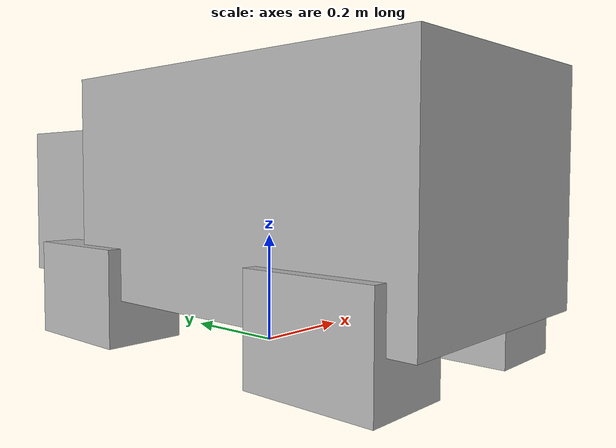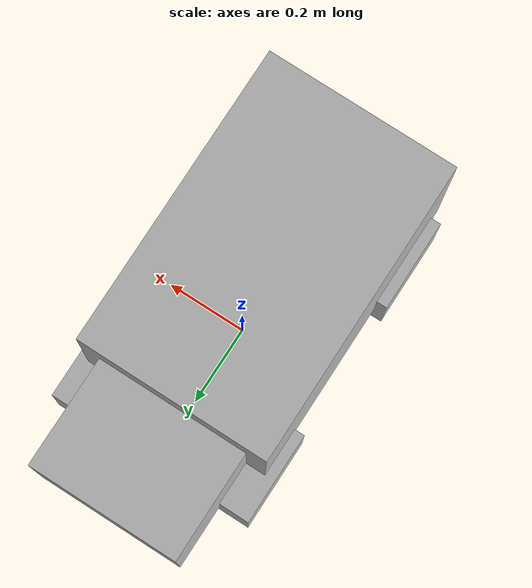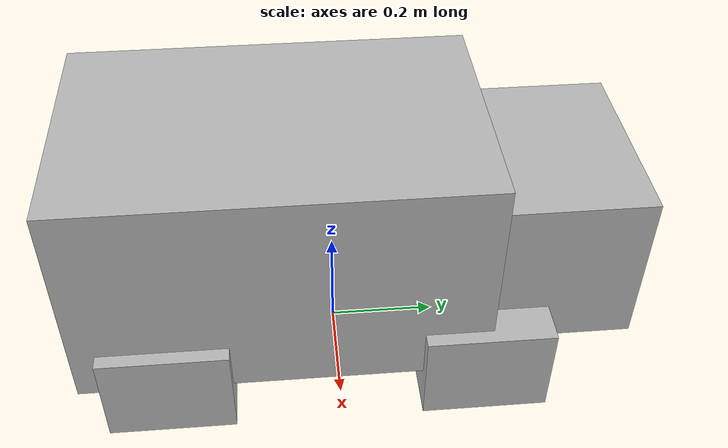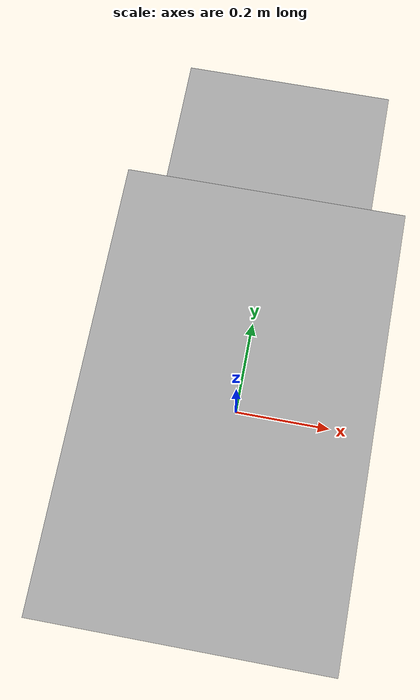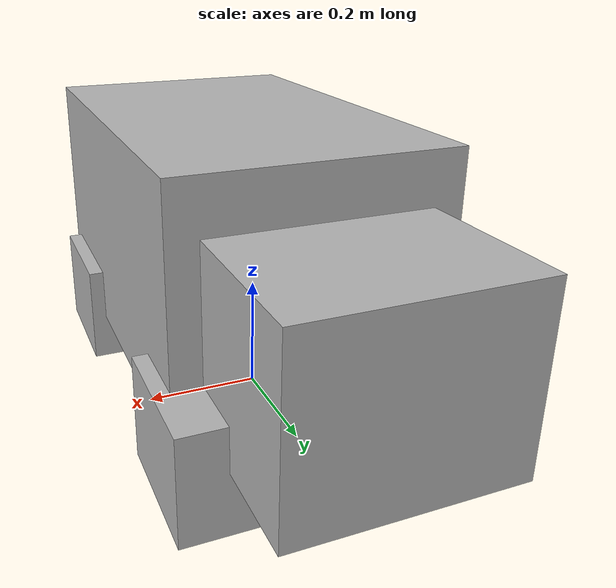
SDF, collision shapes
<?xml version='1.0' encoding='utf-8'?>
<sdf version="1.8">
  <model name="wombat">
    <static>false</static>
    <link name="body">
      <inertial>
        <pose>0 0 0.25 0 0 0</pose>
        <mass>30</mass>
        <inertia>
          <ixx>3.0</ixx>
          <iyy>1.06</iyy>
          <izz>3.05</izz>
          <ixy>0</ixy>
          <ixz>0</ixz>
          <iyz>0</iyz>
        </inertia>
      </inertial>
      <visual name="animal_visual">
        <geometry>
          <mesh>
            <uri>model://wombat/meshes/wombat.dae</uri>
            <scale>1 1 1</scale>
          </mesh>
        </geometry>
      </visual>
      <collision name="body">
        <pose>0 -0.1 0.29 0 0 0</pose>
        <geometry>
          <box>
            <size>0.47 0.74 0.41</size>
          </box>
        </geometry>
      </collision>
      <collision name="head">
        <pose>0 0.36 0.255 0 0 0</pose>
        <geometry>
          <box>
            <size>0.37 0.36 0.3</size>
          </box>
        </geometry>
      </collision>
      <collision name="paw_-1_-0.335">
        <pose>-0.181 -0.31 0.09 0 0 0</pose>
        <geometry>
          <box>
            <size>0.16 0.23 0.18</size>
          </box>
        </geometry>
      </collision>
      <collision name="paw_-1_0.238">
        <pose>-0.181 0.263 0.09 0 0 0</pose>
        <geometry>
          <box>
            <size>0.16 0.23 0.18</size>
          </box>
        </geometry>
      </collision>
      <collision name="paw_1_-0.335">
        <pose>0.181 -0.31 0.09 0 0 0</pose>
        <geometry>
          <box>
            <size>0.16 0.23 0.18</size>
          </box>
        </geometry>
      </collision>
      <collision name="paw_1_0.238">
        <pose>0.181 0.263 0.09 0 0 0</pose>
        <geometry>
          <box>
            <size>0.16 0.23 0.18</size>
          </box>
        </geometry>
      </collision>
    </link>
  </model>
</sdf>
